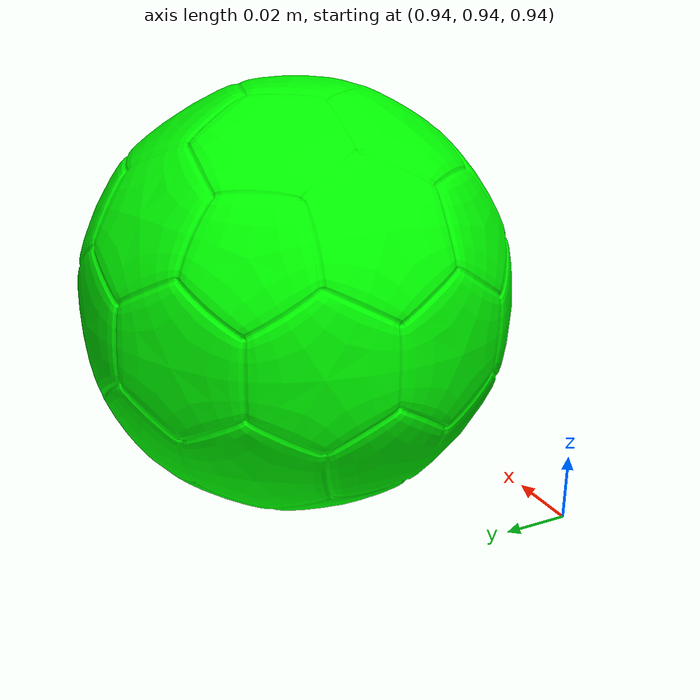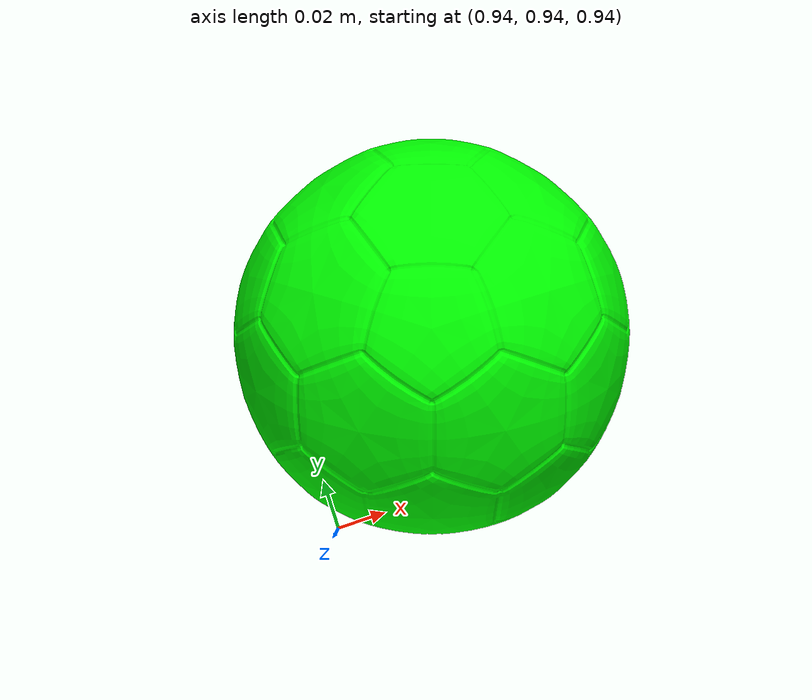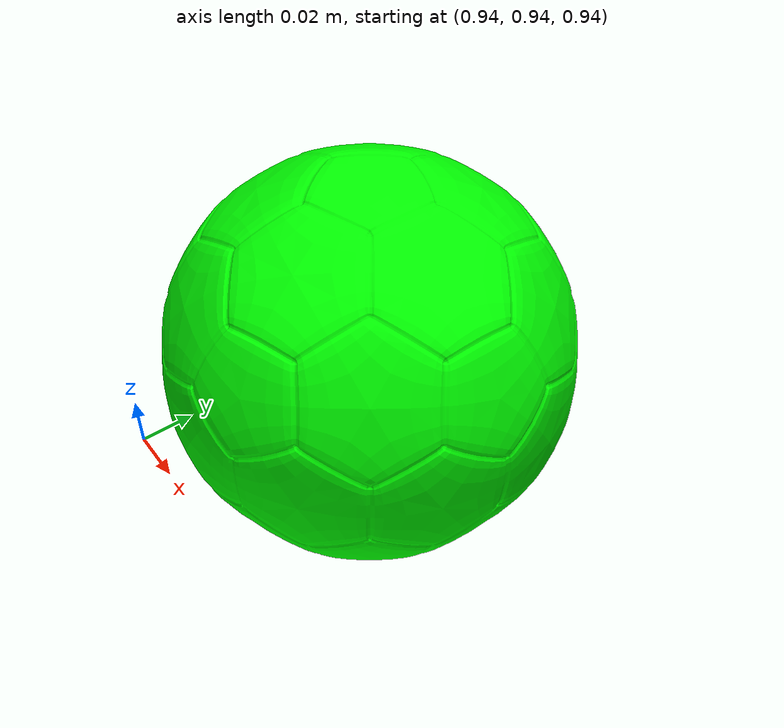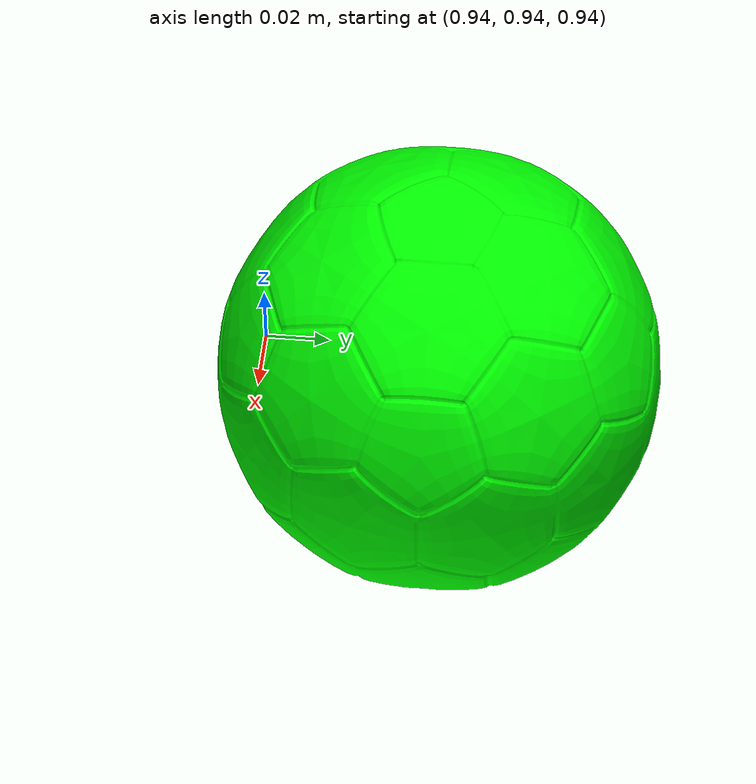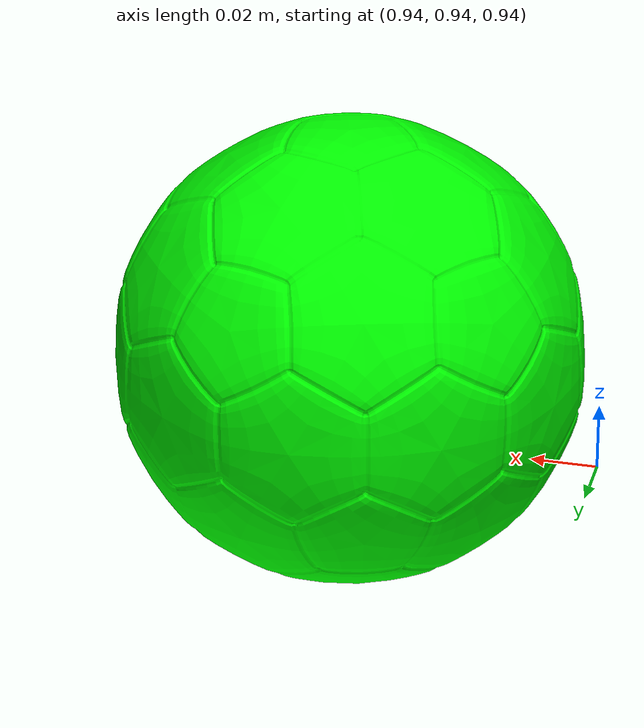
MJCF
<mujoco model="ball">
    <compiler angle="degree" inertiafromgeom="true"/>

    <asset>
        <material name="ball_mat" rgba="0 1 0 1" specular="0.5" shininess="0.5"/>
        <texture builtin="gradient" height="100" rgb1=".4 .5 .6" rgb2="0 0 0" type="skybox" width="100"/>

        <mesh name="ball_mesh" file="soccerball2.stl" scale="0.0714 0.0714 0.0714"/>
    </asset>

    <worldbody>
        <body name="ball" pos="1 1 1">
            <joint name="ball_joint" type="free"/>
            <geom name="ball_geom" type="mesh" mesh="ball_mesh" material="ball_mat" contype="1" conaffinity="1" solref="0.01 0.0003" solimp="0.99 0.99 0.1"/>
        </body>
    </worldbody>
</mujoco>
